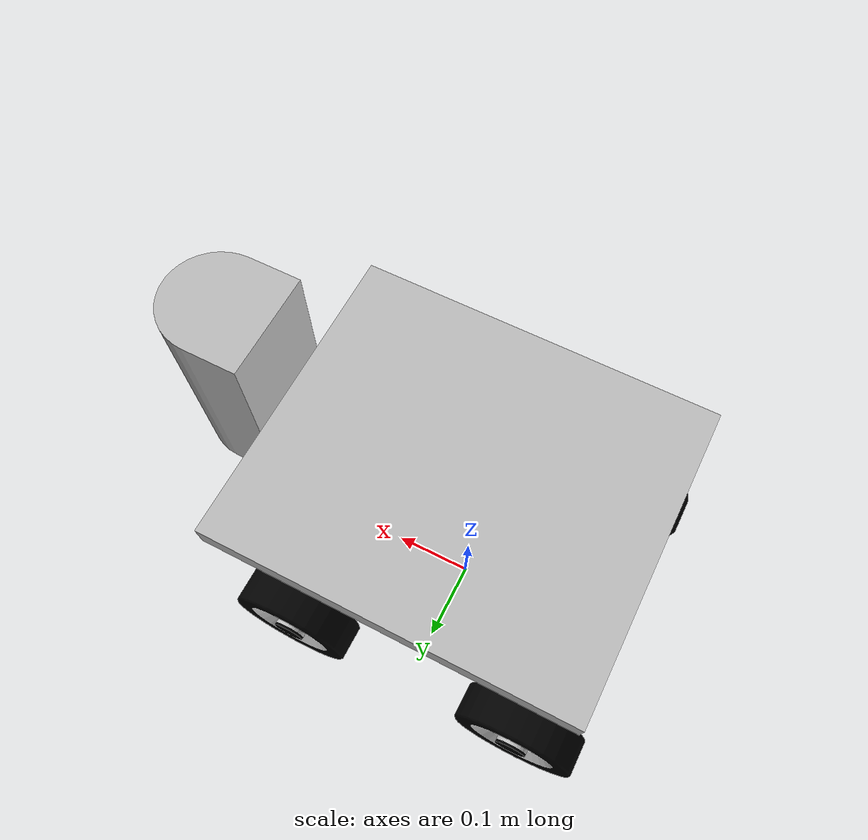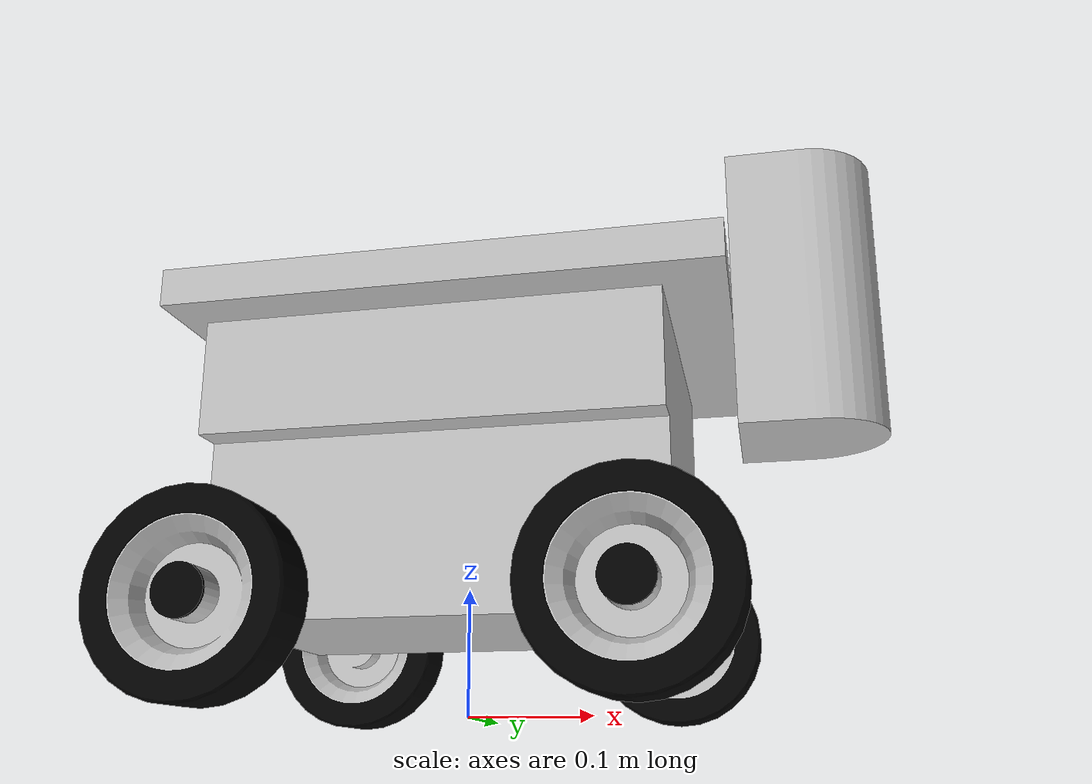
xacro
<?xml version="1.0"?>
<robot name="sdvun" xmlns:xacro="http://www.ros.org/wiki/xacro">
    <xacro:arg name="namespace" default="sdvun"/>
    <xacro:arg name="use_sim_time" default="true"/>

    <xacro:property name="namespace_x" value="$(arg namespace)"/>
    <xacro:property name="prefix" value=""/>

    <xacro:if value="${namespace_x != '' and namespace_x != '/'}">
        <xacro:property name="prefix" value="${namespace_x}/"/>
    </xacro:if>

    <xacro:property name="pi_val" value="3.14159265359"/>

    <xacro:property name="base_visual" value="package://sdv_sim/models/sdvun/sdvun1/meshes/base.dae" />
    <xacro:property name="base_collision" value="package://sdv_sim/models/sdvun/sdvun1/meshes/collision.dae" />
    <xacro:property name="wheel_visual" value="package://sdv_sim/models/sdvun/common/meshes/wheel.dae" />

    <xacro:property name="z_base_elev" value="0.075" />
    <xacro:property name="mass" value="13.676" />
    <xacro:property name="base_ine_xyz" value="0.00 0.00 0.115223" />
    <xacro:property name="base_ixx" value="0.207703686" />
    <xacro:property name="base_iyy" value="0.402153855" />
    <xacro:property name="base_izz" value="0.396408984" />
    <xacro:property name="base_ixy" value="0.001009187" />
    <xacro:property name="base_ixz" value="-0.084130383" />
    <xacro:property name="base_iyz" value="0.000169123" />

    <xacro:property name="x_wheel" value="0.151269" />
    <xacro:property name="y_wheel" value="0.169" />
    <xacro:property name="z_wheel" value="0.075" />
    <xacro:property name="wheel_diameter" value="0.150" />
    <xacro:property name="wheel_radius" value="${wheel_diameter/2}"/>
    <xacro:property name="wheel_separation" value="0.338" /> <xacro:property name="skid_command_topic" value="${prefix}mobile_base/commands/velocity" />
    <xacro:property name="skid_odometry_topic" value="${prefix}wheel_odom" />
    <xacro:property name="skid_odometry_frame" value="odom" />

    <xacro:property name="x_laser" value="0.255" />
    <xacro:property name="y_laser" value="0.0" />
    <xacro:property name="z_laser" value="${0.334371 + z_base_elev}" />
    <xacro:property name="scan_topic" value="${prefix}scan" />
    <xacro:property name="laser_min_angle" value="-3.14159274101" />
    <xacro:property name="laser_max_angle" value="3.14159274101" />
    <xacro:property name="laser_update_rate" value="8" />
    <xacro:property name="laser_samples" value="1440" />

    <xacro:property name="z_imu" value="${0.133339 + z_base_elev}" />
    <xacro:property name="imu_topic" value="${prefix}imu" />
    <xacro:property name="imu_service" value="${prefix}imu_service" />
    <xacro:property name="base_footprint_frame" value="base_footprint" />

    <xacro:macro name="visual_m" params="vis_rpy vis_xyz vis_mesh">
        <visual>
            <origin rpy="${vis_rpy}" xyz="${vis_xyz}" />
            <geometry>
                <mesh filename="${vis_mesh}" scale="1.0 1.0 1.0" />
            </geometry>
        </visual>
    </xacro:macro>

    <xacro:macro name="inertial_m" params="mass ine_xyz ixx iyy izz ixy ixz iyz">
        <inertial>
            <mass value="${mass}" />
            <origin xyz="${ine_xyz}" />
            <inertia ixx="${ixx}" iyy="${iyy}" izz="${izz}" ixy="${ixy}" ixz="${ixz}" iyz="${iyz}" />
        </inertial>
    </xacro:macro>

    <xacro:macro name="collision_m" params="co_xyz co_rpy col_mesh">
        <collision>
            <origin xyz="${co_xyz}" rpy="${co_rpy}" />
            <geometry>
                <mesh filename="${col_mesh}" scale="1.0 1.0 1.0" />
            </geometry>
        </collision>
    </xacro:macro>

    <xacro:macro name="g_link" params="name vis_rpy vis_xyz vis_mesh mass ine_xyz ixx iyy izz ixy ixz iyz co_xyz co_rpy col_mesh ">
        <link name="${name}">
            <xacro:visual_m vis_rpy="${vis_rpy}" vis_xyz="${vis_xyz}" vis_mesh="${vis_mesh}" />
            <xacro:inertial_m mass="${mass}" ine_xyz="${ine_xyz}" ixx="${ixx}" iyy="${iyy}" izz="${izz}" ixy="${ixy}" ixz="${ixz}" iyz="${iyz}" />
            <xacro:collision_m co_xyz="${co_xyz}" co_rpy="${co_rpy}" col_mesh="${col_mesh}" />
        </link>
    </xacro:macro>

    <xacro:macro name="nv_link" params="name">
        <link name="${name}">
            <xacro:inertial_m mass="1e-5" ine_xyz="0 0 0" ixx="1e-6" iyy="1e-6" izz="1e-6" ixy="0" ixz="0" iyz="0" />
            <collision>
                <origin xyz="0 0 0" rpy="0 0 0" />
                <geometry>
                    <box size="0.0001 0.0001 0.0001" />
                </geometry>
            </collision>
        </link>
    </xacro:macro>

    <xacro:macro name="m_joint" params="name type axis origin_xyz origin_rpy parent child">
        <joint name="${name}" type="${type}">
            <origin xyz="${origin_xyz}" rpy="${origin_rpy}" />
            <axis xyz="${axis}" />
            <parent link="${parent}" />
            <child link="${child}" />
        </joint>
    </xacro:macro>

    <xacro:macro name="w_link" params="name vis_mesh">
        <link name="${name}">
            <xacro:visual_m vis_rpy="0 0 0" vis_xyz="0 0 0" vis_mesh="${vis_mesh}" />
            <xacro:inertial_m mass="0.416108" ine_xyz="0 0 0" ixx="0.000394174617" iyy="0.000394174618" izz="0.000599770188" ixy="0" ixz="0" iyz="0" />
            <collision>
                <origin xyz="0 0 0" rpy="0 0 0" />
                <geometry>
                    <cylinder length=".0453" radius="${wheel_radius}" />
                </geometry>
            </collision>
        </link>
        <gazebo reference="${name}">
            <kp>1000000.0</kp>
            <kd>1.0</kd>
            <mu1>0.4</mu1>
            <mu2>0.4</mu2>
            <maxVel>0.0</maxVel>
            <minDepth>0.001</minDepth>
        </gazebo>
    </xacro:macro>

    <xacro:macro name="add_4_wheels" params="base_link wheel_visual x_wheel y_wheel z_wheel">
        <xacro:w_link name="front_right_wheel_link" vis_mesh="${wheel_visual}" />
        <xacro:m_joint name="front_right_wheel_joint" type="continuous" origin_xyz="${x_wheel} -${y_wheel} ${z_wheel}" origin_rpy="0 ${pi_val/2} ${pi_val/2}" axis="0 0 1" parent="${base_link}" child="front_right_wheel_link" />
        <xacro:w_link name="front_left_wheel_link" vis_mesh="${wheel_visual}" />
        <xacro:m_joint name="front_left_wheel_joint" type="continuous" origin_xyz="${x_wheel} ${y_wheel} ${z_wheel}" origin_rpy="0 ${pi_val/2} -${pi_val/2}" axis="0 0 -1" parent="${base_link}" child="front_left_wheel_link" />
        <xacro:w_link name="back_right_wheel_link" vis_mesh="${wheel_visual}" />
        <xacro:m_joint name="back_right_wheel_joint" type="continuous" origin_xyz="-${x_wheel} -${y_wheel} ${z_wheel}" origin_rpy="0 ${pi_val/2} ${pi_val/2}" axis="0 0 1" parent="${base_link}" child="back_right_wheel_link" />
        <xacro:w_link name="back_left_wheel_link" vis_mesh="${wheel_visual}" />
        <xacro:m_joint name="back_left_wheel_joint" type="continuous" origin_xyz="-${x_wheel} ${y_wheel} ${z_wheel}" origin_rpy="0 ${pi_val/2} -${pi_val/2}" axis="0 0 -1" parent="${base_link}" child="back_left_wheel_link" />
    </xacro:macro>

    <link name="${base_footprint_frame}">
        <visual>
            <origin xyz="0 0 0" rpy="0 0 0" />
            <geometry>
                <box size="0.001 0.001 0.001" />
            </geometry>
        </visual>
    </link>

    <link name="base_link">
        <visual>
            <origin xyz="0 0 0" rpy="0 0 0" />
            <geometry>
                <box size="0.001 0.001 0.001" />
            </geometry>
        </visual>
    </link>

    <joint name="base_footprint_joint" type="fixed">
        <origin xyz="0 0 0" rpy="0 0 0" />
        <parent link="${base_footprint_frame}"/>
        <child link="base_link"/>
    </joint>

    <xacro:g_link
        name="chasis_link"
        vis_rpy="0 0 0"
        vis_xyz="0 0 0"
        vis_mesh="${base_visual}"
        mass="${mass}"
        ine_xyz="${base_ine_xyz}"
        ixx="${base_ixx}"
        iyy="${base_iyy}"
        izz="${base_izz}"
        ixy="${base_ixy}"
        ixz="${base_ixz}"
        iyz="${base_iyz}"
        co_xyz="0 0 0"
        co_rpy="0 0 0"
        col_mesh="${base_collision}"
    />

    <xacro:m_joint
        name="base_to_chasis_joint"
        type="fixed"
        origin_xyz="0 0 ${z_base_elev}"
        origin_rpy="0 0 0"
        axis="0 0 1"
        parent="base_link"
        child="chasis_link"
    />

    <xacro:add_4_wheels
        base_link="base_link"
        wheel_visual="${wheel_visual}"
        x_wheel="${x_wheel}"
        y_wheel="${y_wheel}"
        z_wheel="${z_wheel}"
    />

    <xacro:nv_link name="laser_sensor_link" />

    <xacro:m_joint
        name="laser_joint"
        type="fixed"
        origin_xyz="${x_laser} ${y_laser} ${z_laser}"
        origin_rpy="0 0 0"
        axis="0 0 1"
        parent="base_link"
        child="laser_sensor_link"
    />

    <xacro:nv_link name="imu_sensor_link" />

    <xacro:m_joint
        name="imu_joint"
        type="fixed"
        origin_xyz="0.0 0.0 ${z_imu}"
        origin_rpy="0 0 0"
        axis="0 0 1"
        parent="base_link"
        child="imu_sensor_link"
    />

    <gazebo>
        <plugin name="diff_drive_controller" filename="libgazebo_ros_diff_drive.so">
            <update_rate>100.0</update_rate>

            <left_joint>front_left_wheel_joint, back_left_wheel_joint</left_joint>
            <right_joint>front_right_wheel_joint, back_right_wheel_joint</right_joint>

            <wheel_separation>${wheel_separation}</wheel_separation>
            <wheel_radius>${wheel_radius}</wheel_radius>
            <publish_wheel_tf>false</publish_wheel_tf>
            <publish_wheel_joint_state>true</publish_wheel_joint_state>

            <command_topic>${skid_command_topic}</command_topic>
            <odom_topic>${skid_odometry_topic}</odom_topic>
            <odom_frame>${skid_odometry_frame}</odom_frame>
            <robot_base_frame>base_link</robot_base_frame>
            <publish_odom_tf>false</publish_odom_tf>

            <ros_parameters_override_namespace>/</ros_parameters_override_namespace>
            <interface_name>cmd_vel</interface_name>

            <ros>
                <namespace>${namespace_x}</namespace>
            </ros>
        </plugin>
    </gazebo>

    <sensor name='gpu_lidar' type='gpu_lidar'>"
        <pose relative_to='laser_sensor_link'>0 0 0 0 0 0</pose>
        <topic>lidar</topic>
        <update_rate>10</update_rate>
        <ray>
            <scan>
                <horizontal>
                    <samples>640</samples>
                    <resolution>1</resolution>
                    <min_angle>-1.396263</min_angle>
                    <max_angle>1.396263</max_angle>
                </horizontal>
                <vertical>
                    <samples>1</samples>
                    <resolution>0.01</resolution>
                    <min_angle>0</min_angle>
                    <max_angle>0</max_angle>
                </vertical>
            </scan>
            <range>
                <min>0.08</min>
                <max>10.0</max>
                <resolution>0.01</resolution>
            </range>
        </ray>
        <always_on>1</always_on>
        <visualize>true</visualize>
    </sensor>

    <gazebo reference="imu_sensor_link">
        <sensor type="imu" name="imu_sensor">
            <always_on>true</always_on>
            <update_rate>200.0</update_rate>
            <imu>
                <angular_velocity>
                    <x>
                        <noise type="gaussian">
                            <mean>0.0</mean>
                            <stddev>2e-4</stddev>
                            <bias_mean>0.0000075</bias_mean>
                            <bias_stddev>0.0000008</bias_stddev>
                        </noise>
                    </x>
                </angular_velocity>
                <linear_acceleration>
                    <x>
                        <noise type="gaussian">
                            <mean>0.0</mean>
                            <stddev>1.7e-2</stddev>
                            <bias_mean>0.1</bias_mean>
                            <bias_stddev>0.001</bias_stddev>
                        </noise>
                    </x>
                </linear_acceleration>
            </imu>
            <plugin name="gazebo_ros_imu_controller" filename="libgazebo_ros_imu_sensor.so">
                <ros>
                    <namespace>${namespace_x}</namespace>
                    <argument>--ros-args -r ~/out:=${imu_topic}</argument>
                </ros>
                <frame_name>imu_sensor_link</frame_name>
                <initial_orientation_as_reference>false</initial_orientation_as_reference>
            </plugin>
        </sensor>
    </gazebo>

</robot>
